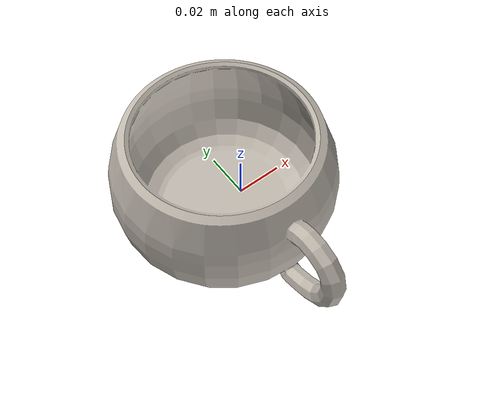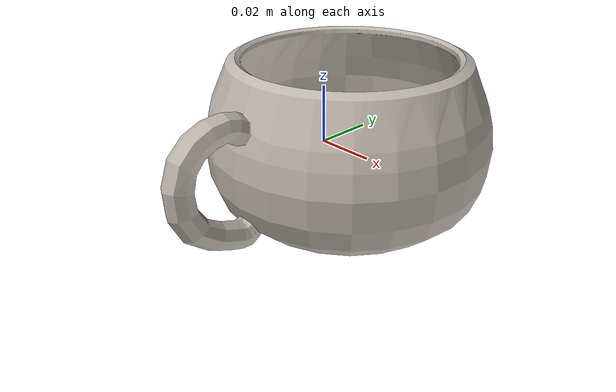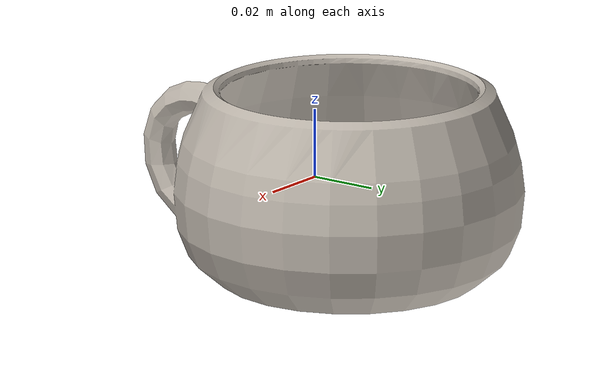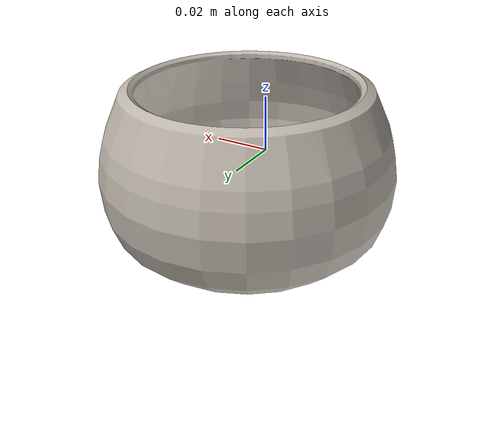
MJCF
<mujoco model="mug_67">
  <asset>
    <mesh file="visual/model_normalized_0.obj" name="model_normalized_0_vis" scale="0.125 0.125 0.125" refquat="0.7071067811865475 0.0 0.0 0.7071067811865476"/>
    <texture type="2d" name="image0" file="visual/image0.png"/>
    <material name="Subajelly_material" texture="image0" specular="0.1" shininess="0.2" emission="0.15"/>
    <mesh file="collision/collision_mesh_collision_0.obj" name="mug_collision_mesh_0" scale="0.125 0.125 0.125" refquat="0.7071067811865475 0.0 0.0 0.7071067811865476"/>
    <mesh file="collision/collision_mesh_collision_1.obj" name="mug_collision_mesh_1" scale="0.125 0.125 0.125" refquat="0.7071067811865475 0.0 0.0 0.7071067811865476"/>
    <mesh file="collision/collision_mesh_collision_2.obj" name="mug_collision_mesh_2" scale="0.125 0.125 0.125" refquat="0.7071067811865475 0.0 0.0 0.7071067811865476"/>
    <mesh file="collision/collision_mesh_collision_3.obj" name="mug_collision_mesh_3" scale="0.125 0.125 0.125" refquat="0.7071067811865475 0.0 0.0 0.7071067811865476"/>
    <mesh file="collision/collision_mesh_collision_4.obj" name="mug_collision_mesh_4" scale="0.125 0.125 0.125" refquat="0.7071067811865475 0.0 0.0 0.7071067811865476"/>
    <mesh file="collision/collision_mesh_collision_5.obj" name="mug_collision_mesh_5" scale="0.125 0.125 0.125" refquat="0.7071067811865475 0.0 0.0 0.7071067811865476"/>
    <mesh file="collision/collision_mesh_collision_6.obj" name="mug_collision_mesh_6" scale="0.125 0.125 0.125" refquat="0.7071067811865475 0.0 0.0 0.7071067811865476"/>
    <mesh file="collision/collision_mesh_collision_7.obj" name="mug_collision_mesh_7" scale="0.125 0.125 0.125" refquat="0.7071067811865475 0.0 0.0 0.7071067811865476"/>
    <mesh file="collision/collision_mesh_collision_8.obj" name="mug_collision_mesh_8" scale="0.125 0.125 0.125" refquat="0.7071067811865475 0.0 0.0 0.7071067811865476"/>
    <mesh file="collision/collision_mesh_collision_9.obj" name="mug_collision_mesh_9" scale="0.125 0.125 0.125" refquat="0.7071067811865475 0.0 0.0 0.7071067811865476"/>
    <mesh file="collision/collision_mesh_collision_10.obj" name="mug_collision_mesh_10" scale="0.125 0.125 0.125" refquat="0.7071067811865475 0.0 0.0 0.7071067811865476"/>
    <mesh file="collision/collision_mesh_collision_11.obj" name="mug_collision_mesh_11" scale="0.125 0.125 0.125" refquat="0.7071067811865475 0.0 0.0 0.7071067811865476"/>
    <mesh file="collision/collision_mesh_collision_12.obj" name="mug_collision_mesh_12" scale="0.125 0.125 0.125" refquat="0.7071067811865475 0.0 0.0 0.7071067811865476"/>
    <mesh file="collision/collision_mesh_collision_13.obj" name="mug_collision_mesh_13" scale="0.125 0.125 0.125" refquat="0.7071067811865475 0.0 0.0 0.7071067811865476"/>
    <mesh file="collision/collision_mesh_collision_14.obj" name="mug_collision_mesh_14" scale="0.125 0.125 0.125" refquat="0.7071067811865475 0.0 0.0 0.7071067811865476"/>
    <mesh file="collision/collision_mesh_collision_15.obj" name="mug_collision_mesh_15" scale="0.125 0.125 0.125" refquat="0.7071067811865475 0.0 0.0 0.7071067811865476"/>
  </asset>
  <default>
    <default class="region">
      <geom group="1" conaffinity="0" contype="0" rgba="0 1 0 0" density="0"/>
    </default>
    <default class="collision">
      <geom group="3" rgba="0.5 0 0 0.5" density="0"/>
    </default>
  </default>
  <worldbody>
    <body>
      <body name="object">
        <geom density="0" friction="1.2 0.05 0.001" type="mesh" mesh="model_normalized_0_vis" conaffinity="0" contype="0" group="1" material="Subajelly_material" mass="0.3"/>
        <geom class="region" name="reg_bbox" type="box" pos="9.087500000004578e-07 6.477562500000617e-05 -9.975125000000022e-05" size="0.05091633625 0.062973074375 0.029248022499999998" density="0"/>        <geom mesh="mug_collision_mesh_0" type="mesh" class="collision" density="0"/>
        <geom mesh="mug_collision_mesh_1" type="mesh" class="collision" density="0"/>
        <geom mesh="mug_collision_mesh_2" type="mesh" class="collision" density="0"/>
        <geom mesh="mug_collision_mesh_3" type="mesh" class="collision" density="0"/>
        <geom mesh="mug_collision_mesh_4" type="mesh" class="collision" density="0"/>
        <geom mesh="mug_collision_mesh_5" type="mesh" class="collision" density="0"/>
        <geom mesh="mug_collision_mesh_6" type="mesh" class="collision" density="0"/>
        <geom mesh="mug_collision_mesh_7" type="mesh" class="collision" density="0"/>
        <geom mesh="mug_collision_mesh_8" type="mesh" class="collision" density="0"/>
        <geom mesh="mug_collision_mesh_9" type="mesh" class="collision" density="0"/>
        <geom mesh="mug_collision_mesh_10" type="mesh" class="collision" density="0"/>
        <geom mesh="mug_collision_mesh_11" type="mesh" class="collision" density="0"/>
        <geom mesh="mug_collision_mesh_12" type="mesh" class="collision" density="0"/>
        <geom mesh="mug_collision_mesh_13" type="mesh" class="collision" density="0"/>
        <geom mesh="mug_collision_mesh_14" type="mesh" class="collision" density="0"/>
        <geom mesh="mug_collision_mesh_15" type="mesh" class="collision" density="0"/>
        <geom rgba="0 0 0 0" size="0.038 0.02" pos="0 0.015 0.002" type="cylinder" name="liquid" class="region" density="0"/>        <geom rgba="0 0 0 0 " size="0.044 0.044 0.025" pos="0 0.012 0.002" type="ellipsoid" name="reg_int" class="region" density="0"/>      </body>
    </body>
  </worldbody>
</mujoco>
